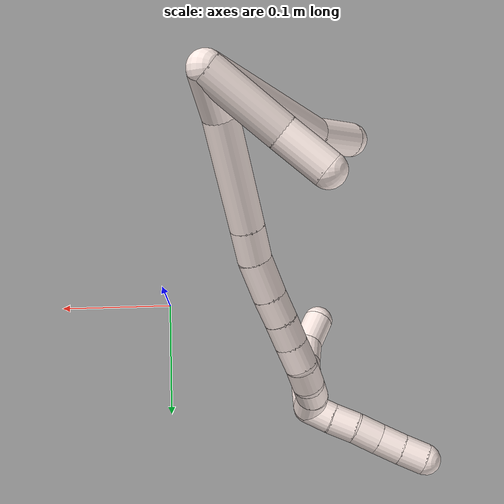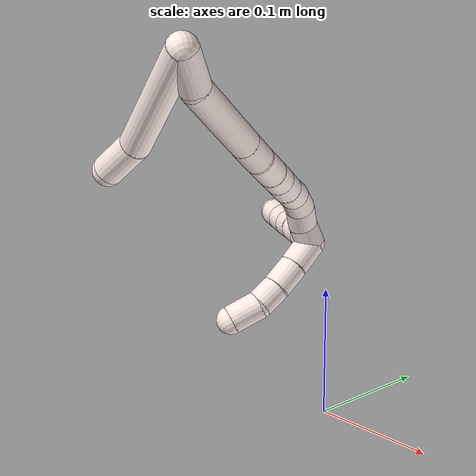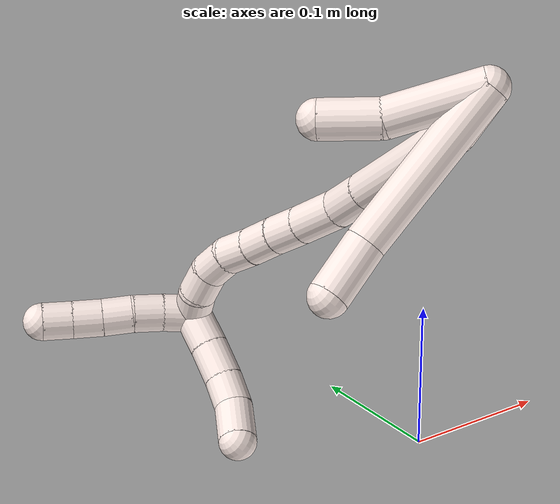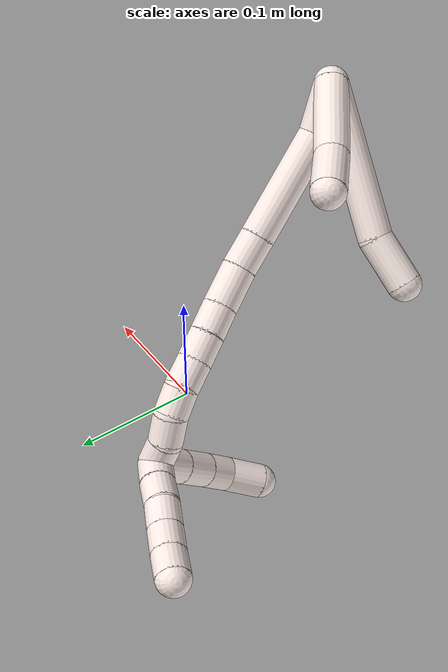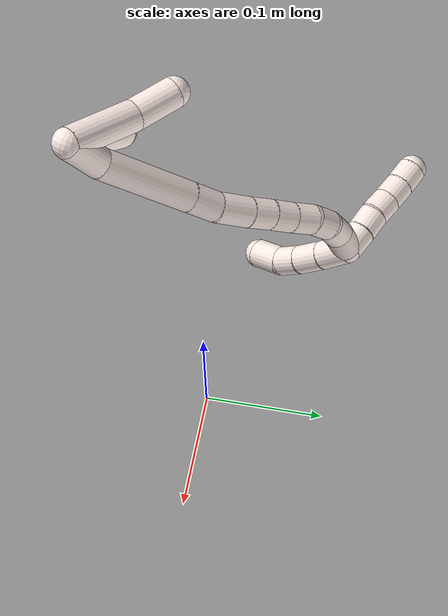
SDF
<sdf version="1.7">
 <world name="default">
  <model name="11">
   <static>0</static>
   <link name="11">
    <collision name="collision-cylinder-e_1_2_8">
     <pose>-0.048901 0.027367 0.000797 -1.54169 -1.0604 1.03518</pose>
     <geometry><cylinder><radius>0.0125</radius><length>0.112088</length></cylinder></geometry>
     <surface>
      <friction><ode><mu>1.16</mu><mu2>1.16</mu2><slip1>0</slip1><slip2>0</slip2></ode></friction>
      <contact><ode><kp>1e+06</kp><kd>1</kd><max_vel>0</max_vel><min_depth>0.001</min_depth></ode></contact>
     </surface>
    </collision>
    <visual name="visual-cylinder-e_1_2_8">
     <pose>-0.048901 0.027367 0.000797 -1.54169 -1.0604 1.03518</pose>
     <geometry><cylinder><radius>0.0125</radius><length>0.112088</length></cylinder></geometry>
     <material><ambient>1 0.933333 0.909804 1</ambient></material>
    </visual>
    <collision name="collision-cylinder-e_2_8_6">
     <pose>-0.116148 0.059173 0.003347 -1.19453 -1.31632 0.968224</pose>
     <geometry><cylinder><radius>0.0125</radius><length>0.037912</length></cylinder></geometry>
     <surface>
      <friction><ode><mu>1.16</mu><mu2>1.16</mu2><slip1>0</slip1><slip2>0</slip2></ode></friction>
      <contact><ode><kp>1e+06</kp><kd>1</kd><max_vel>0</max_vel><min_depth>0.001</min_depth></ode></contact>
     </surface>
    </collision>
    <visual name="visual-cylinder-e_2_8_6">
     <pose>-0.116148 0.059173 0.003347 -1.19453 -1.31632 0.968224</pose>
     <geometry><cylinder><radius>0.0125</radius><length>0.037912</length></cylinder></geometry>
     <material><ambient>1 0.933333 0.909804 1</ambient></material>
    </visual>
    <collision name="collision-cylinder-e_1_2_9">
     <pose>-0.015964 0.022622 0.014244 -1.00886 -0.538331 0.302265</pose>
     <geometry><cylinder><radius>0.0125</radius><length>0.062273</length></cylinder></geometry>
     <surface>
      <friction><ode><mu>1.16</mu><mu2>1.16</mu2><slip1>0</slip1><slip2>0</slip2></ode></friction>
      <contact><ode><kp>1e+06</kp><kd>1</kd><max_vel>0</max_vel><min_depth>0.001</min_depth></ode></contact>
     </surface>
    </collision>
    <visual name="visual-cylinder-e_1_2_9">
     <pose>-0.015964 0.022622 0.014244 -1.00886 -0.538331 0.302265</pose>
     <geometry><cylinder><radius>0.0125</radius><length>0.062273</length></cylinder></geometry>
     <material><ambient>1 0.933333 0.909804 1</ambient></material>
    </visual>
    <collision name="collision-cylinder-e_2_9_5">
     <pose>-0.0379 0.058399 0.040617 -0.825941 -0.322155 0.142152</pose>
     <geometry><cylinder><radius>0.0125</radius><length>0.037727</length></cylinder></geometry>
     <surface>
      <friction><ode><mu>1.16</mu><mu2>1.16</mu2><slip1>0</slip1><slip2>0</slip2></ode></friction>
      <contact><ode><kp>1e+06</kp><kd>1</kd><max_vel>0</max_vel><min_depth>0.001</min_depth></ode></contact>
     </surface>
    </collision>
    <visual name="visual-cylinder-e_2_9_5">
     <pose>-0.0379 0.058399 0.040617 -0.825941 -0.322155 0.142152</pose>
     <geometry><cylinder><radius>0.0125</radius><length>0.037727</length></cylinder></geometry>
     <material><ambient>1 0.933333 0.909804 1</ambient></material>
    </visual>
    <collision name="collision-cylinder-e_1_2_10">
     <pose>-0.009166 0.015047 -0.005469 -1.91943 -0.519995 0.725839</pose>
     <geometry><cylinder><radius>0.0125</radius><length>0.036896</length></cylinder></geometry>
     <surface>
      <friction><ode><mu>1.16</mu><mu2>1.16</mu2><slip1>0</slip1><slip2>0</slip2></ode></friction>
      <contact><ode><kp>1e+06</kp><kd>1</kd><max_vel>0</max_vel><min_depth>0.001</min_depth></ode></contact>
     </surface>
    </collision>
    <visual name="visual-cylinder-e_1_2_10">
     <pose>-0.009166 0.015047 -0.005469 -1.91943 -0.519995 0.725839</pose>
     <geometry><cylinder><radius>0.0125</radius><length>0.036896</length></cylinder></geometry>
     <material><ambient>1 0.933333 0.909804 1</ambient></material>
    </visual>
    <collision name="collision-cylinder-e_2_10_11">
     <pose>-0.029072 0.069854 -0.015469 -1.68427 -0.262186 0.293334</pose>
     <geometry><cylinder><radius>0.0125</radius><length>0.082869</length></cylinder></geometry>
     <surface>
      <friction><ode><mu>1.16</mu><mu2>1.16</mu2><slip1>0</slip1><slip2>0</slip2></ode></friction>
      <contact><ode><kp>1e+06</kp><kd>1</kd><max_vel>0</max_vel><min_depth>0.001</min_depth></ode></contact>
     </surface>
    </collision>
    <visual name="visual-cylinder-e_2_10_11">
     <pose>-0.029072 0.069854 -0.015469 -1.68427 -0.262186 0.293334</pose>
     <geometry><cylinder><radius>0.0125</radius><length>0.082869</length></cylinder></geometry>
     <material><ambient>1 0.933333 0.909804 1</ambient></material>
    </visual>
    <collision name="collision-cylinder-e_3_11_12">
     <pose>-0.043051 0.121949 -0.021453 -1.68805 -0.25517 0.286583</pose>
     <geometry><cylinder><radius>0.0125</radius><length>0.025668</length></cylinder></geometry>
     <surface>
      <friction><ode><mu>1.16</mu><mu2>1.16</mu2><slip1>0</slip1><slip2>0</slip2></ode></friction>
      <contact><ode><kp>1e+06</kp><kd>1</kd><max_vel>0</max_vel><min_depth>0.001</min_depth></ode></contact>
     </surface>
    </collision>
    <visual name="visual-cylinder-e_3_11_12">
     <pose>-0.043051 0.121949 -0.021453 -1.68805 -0.25517 0.286583</pose>
     <geometry><cylinder><radius>0.0125</radius><length>0.025668</length></cylinder></geometry>
     <material><ambient>1 0.933333 0.909804 1</ambient></material>
    </visual>
    <collision name="collision-cylinder-e_4_12_13">
     <pose>-0.050743 0.148975 -0.022049 -1.51252 -0.29373 0.277311</pose>
     <geometry><cylinder><radius>0.0125</radius><length>0.030753</length></cylinder></geometry>
     <surface>
      <friction><ode><mu>1.16</mu><mu2>1.16</mu2><slip1>0</slip1><slip2>0</slip2></ode></friction>
      <contact><ode><kp>1e+06</kp><kd>1</kd><max_vel>0</max_vel><min_depth>0.001</min_depth></ode></contact>
     </surface>
    </collision>
    <visual name="visual-cylinder-e_4_12_13">
     <pose>-0.050743 0.148975 -0.022049 -1.51252 -0.29373 0.277311</pose>
     <geometry><cylinder><radius>0.0125</radius><length>0.030753</length></cylinder></geometry>
     <material><ambient>1 0.933333 0.909804 1</ambient></material>
    </visual>
    <collision name="collision-cylinder-e_5_13_14">
     <pose>-0.058461 0.173875 -0.020092 -1.46343 -0.308008 0.277018</pose>
     <geometry><cylinder><radius>0.0125</radius><length>0.021546</length></cylinder></geometry>
     <surface>
      <friction><ode><mu>1.16</mu><mu2>1.16</mu2><slip1>0</slip1><slip2>0</slip2></ode></friction>
      <contact><ode><kp>1e+06</kp><kd>1</kd><max_vel>0</max_vel><min_depth>0.001</min_depth></ode></contact>
     </surface>
    </collision>
    <visual name="visual-cylinder-e_5_13_14">
     <pose>-0.058461 0.173875 -0.020092 -1.46343 -0.308008 0.277018</pose>
     <geometry><cylinder><radius>0.0125</radius><length>0.021546</length></cylinder></geometry>
     <material><ambient>1 0.933333 0.909804 1</ambient></material>
    </visual>
    <collision name="collision-cylinder-e_6_14_15">
     <pose>-0.064959 0.19399 -0.018317 -1.50285 -0.314655 0.294277</pose>
     <geometry><cylinder><radius>0.0125</radius><length>0.020888</length></cylinder></geometry>
     <surface>
      <friction><ode><mu>1.16</mu><mu2>1.16</mu2><slip1>0</slip1><slip2>0</slip2></ode></friction>
      <contact><ode><kp>1e+06</kp><kd>1</kd><max_vel>0</max_vel><min_depth>0.001</min_depth></ode></contact>
     </surface>
    </collision>
    <visual name="visual-cylinder-e_6_14_15">
     <pose>-0.064959 0.19399 -0.018317 -1.50285 -0.314655 0.294277</pose>
     <geometry><cylinder><radius>0.0125</radius><length>0.020888</length></cylinder></geometry>
     <material><ambient>1 0.933333 0.909804 1</ambient></material>
    </visual>
    <collision name="collision-cylinder-e_7_15_16">
     <pose>-0.071147 0.213849 -0.016425 -1.449 -0.286732 0.254153</pose>
     <geometry><cylinder><radius>0.0125</radius><length>0.020904</length></cylinder></geometry>
     <surface>
      <friction><ode><mu>1.16</mu><mu2>1.16</mu2><slip1>0</slip1><slip2>0</slip2></ode></friction>
      <contact><ode><kp>1e+06</kp><kd>1</kd><max_vel>0</max_vel><min_depth>0.001</min_depth></ode></contact>
     </surface>
    </collision>
    <visual name="visual-cylinder-e_7_15_16">
     <pose>-0.071147 0.213849 -0.016425 -1.449 -0.286732 0.254153</pose>
     <geometry><cylinder><radius>0.0125</radius><length>0.020904</length></cylinder></geometry>
     <material><ambient>1 0.933333 0.909804 1</ambient></material>
    </visual>
    <collision name="collision-cylinder-e_8_16_17">
     <pose>-0.078208 0.232898 -0.016353 -1.69615 -0.420935 0.475325</pose>
     <geometry><cylinder><radius>0.0125</radius><length>0.020094</length></cylinder></geometry>
     <surface>
      <friction><ode><mu>1.16</mu><mu2>1.16</mu2><slip1>0</slip1><slip2>0</slip2></ode></friction>
      <contact><ode><kp>1e+06</kp><kd>1</kd><max_vel>0</max_vel><min_depth>0.001</min_depth></ode></contact>
     </surface>
    </collision>
    <visual name="visual-cylinder-e_8_16_17">
     <pose>-0.078208 0.232898 -0.016353 -1.69615 -0.420935 0.475325</pose>
     <geometry><cylinder><radius>0.0125</radius><length>0.020094</length></cylinder></geometry>
     <material><ambient>1 0.933333 0.909804 1</ambient></material>
    </visual>
    <collision name="collision-cylinder-e_9_17_18">
     <pose>-0.087971 0.249665 -0.021005 -1.99948 -0.590956 0.884917</pose>
     <geometry><cylinder><radius>0.0125</radius><length>0.020309</length></cylinder></geometry>
     <surface>
      <friction><ode><mu>1.16</mu><mu2>1.16</mu2><slip1>0</slip1><slip2>0</slip2></ode></friction>
      <contact><ode><kp>1e+06</kp><kd>1</kd><max_vel>0</max_vel><min_depth>0.001</min_depth></ode></contact>
     </surface>
    </collision>
    <visual name="visual-cylinder-e_9_17_18">
     <pose>-0.087971 0.249665 -0.021005 -1.99948 -0.590956 0.884917</pose>
     <geometry><cylinder><radius>0.0125</radius><length>0.020309</length></cylinder></geometry>
     <material><ambient>1 0.933333 0.909804 1</ambient></material>
    </visual>
    <collision name="collision-cylinder-e_10_18_1">
     <pose>-0.097298 0.264884 -0.030013 -2.20068 -0.374221 0.712792</pose>
     <geometry><cylinder><radius>0.0125</radius><length>0.020073</length></cylinder></geometry>
     <surface>
      <friction><ode><mu>1.16</mu><mu2>1.16</mu2><slip1>0</slip1><slip2>0</slip2></ode></friction>
      <contact><ode><kp>1e+06</kp><kd>1</kd><max_vel>0</max_vel><min_depth>0.001</min_depth></ode></contact>
     </surface>
    </collision>
    <visual name="visual-cylinder-e_10_18_1">
     <pose>-0.097298 0.264884 -0.030013 -2.20068 -0.374221 0.712792</pose>
     <geometry><cylinder><radius>0.0125</radius><length>0.020073</length></cylinder></geometry>
     <material><ambient>1 0.933333 0.909804 1</ambient></material>
    </visual>
    <collision name="collision-cylinder-e_1_1_19">
     <pose>-0.104948 0.277141 -0.027643 -0.538943 -0.409463 0.114571</pose>
     <geometry><cylinder><radius>0.0125</radius><length>0.02</length></cylinder></geometry>
     <surface>
      <friction><ode><mu>1.16</mu><mu2>1.16</mu2><slip1>0</slip1><slip2>0</slip2></ode></friction>
      <contact><ode><kp>1e+06</kp><kd>1</kd><max_vel>0</max_vel><min_depth>0.001</min_depth></ode></contact>
     </surface>
    </collision>
    <visual name="visual-cylinder-e_1_1_19">
     <pose>-0.104948 0.277141 -0.027643 -0.538943 -0.409463 0.114571</pose>
     <geometry><cylinder><radius>0.0125</radius><length>0.02</length></cylinder></geometry>
     <material><ambient>1 0.933333 0.909804 1</ambient></material>
    </visual>
    <collision name="collision-cylinder-e_2_19_20">
     <pose>-0.113564 0.286202 -0.012052 -0.513535 -0.481921 0.128863</pose>
     <geometry><cylinder><radius>0.0125</radius><length>0.02</length></cylinder></geometry>
     <surface>
      <friction><ode><mu>1.16</mu><mu2>1.16</mu2><slip1>0</slip1><slip2>0</slip2></ode></friction>
      <contact><ode><kp>1e+06</kp><kd>1</kd><max_vel>0</max_vel><min_depth>0.001</min_depth></ode></contact>
     </surface>
    </collision>
    <visual name="visual-cylinder-e_2_19_20">
     <pose>-0.113564 0.286202 -0.012052 -0.513535 -0.481921 0.128863</pose>
     <geometry><cylinder><radius>0.0125</radius><length>0.02</length></cylinder></geometry>
     <material><ambient>1 0.933333 0.909804 1</ambient></material>
    </visual>
    <collision name="collision-cylinder-e_3_20_21">
     <pose>-0.123186 0.295868 0.002515 -0.659769 -0.522095 0.18243</pose>
     <geometry><cylinder><radius>0.0125</radius><length>0.02</length></cylinder></geometry>
     <surface>
      <friction><ode><mu>1.16</mu><mu2>1.16</mu2><slip1>0</slip1><slip2>0</slip2></ode></friction>
      <contact><ode><kp>1e+06</kp><kd>1</kd><max_vel>0</max_vel><min_depth>0.001</min_depth></ode></contact>
     </surface>
    </collision>
    <visual name="visual-cylinder-e_3_20_21">
     <pose>-0.123186 0.295868 0.002515 -0.659769 -0.522095 0.18243</pose>
     <geometry><cylinder><radius>0.0125</radius><length>0.02</length></cylinder></geometry>
     <material><ambient>1 0.933333 0.909804 1</ambient></material>
    </visual>
    <collision name="collision-cylinder-e_4_21_22">
     <pose>-0.132895 0.306134 0.016655 -0.596714 -0.491809 0.154068</pose>
     <geometry><cylinder><radius>0.0125</radius><length>0.02</length></cylinder></geometry>
     <surface>
      <friction><ode><mu>1.16</mu><mu2>1.16</mu2><slip1>0</slip1><slip2>0</slip2></ode></friction>
      <contact><ode><kp>1e+06</kp><kd>1</kd><max_vel>0</max_vel><min_depth>0.001</min_depth></ode></contact>
     </surface>
    </collision>
    <visual name="visual-cylinder-e_4_21_22">
     <pose>-0.132895 0.306134 0.016655 -0.596714 -0.491809 0.154068</pose>
     <geometry><cylinder><radius>0.0125</radius><length>0.02</length></cylinder></geometry>
     <material><ambient>1 0.933333 0.909804 1</ambient></material>
    </visual>
    <collision name="collision-cylinder-e_5_22_4">
     <pose>-0.142342 0.315706 0.031453 -0.551599 -0.492109 0.141915</pose>
     <geometry><cylinder><radius>0.0125</radius><length>0.02</length></cylinder></geometry>
     <surface>
      <friction><ode><mu>1.16</mu><mu2>1.16</mu2><slip1>0</slip1><slip2>0</slip2></ode></friction>
      <contact><ode><kp>1e+06</kp><kd>1</kd><max_vel>0</max_vel><min_depth>0.001</min_depth></ode></contact>
     </surface>
    </collision>
    <visual name="visual-cylinder-e_5_22_4">
     <pose>-0.142342 0.315706 0.031453 -0.551599 -0.492109 0.141915</pose>
     <geometry><cylinder><radius>0.0125</radius><length>0.02</length></cylinder></geometry>
     <material><ambient>1 0.933333 0.909804 1</ambient></material>
    </visual>
    <collision name="collision-cylinder-e_1_1_23">
     <pose>-0.109993 0.266597 -0.043338 2.50063 -0.746389 -1.73524</pose>
     <geometry><cylinder><radius>0.0125</radius><length>0.026587</length></cylinder></geometry>
     <surface>
      <friction><ode><mu>1.16</mu><mu2>1.16</mu2><slip1>0</slip1><slip2>0</slip2></ode></friction>
      <contact><ode><kp>1e+06</kp><kd>1</kd><max_vel>0</max_vel><min_depth>0.001</min_depth></ode></contact>
     </surface>
    </collision>
    <visual name="visual-cylinder-e_1_1_23">
     <pose>-0.109993 0.266597 -0.043338 2.50063 -0.746389 -1.73524</pose>
     <geometry><cylinder><radius>0.0125</radius><length>0.026587</length></cylinder></geometry>
     <material><ambient>1 0.933333 0.909804 1</ambient></material>
    </visual>
    <collision name="collision-cylinder-e_2_23_24">
     <pose>-0.127743 0.255277 -0.057842 2.45428 -0.790007 -1.72296</pose>
     <geometry><cylinder><radius>0.0125</radius><length>0.024563</length></cylinder></geometry>
     <surface>
      <friction><ode><mu>1.16</mu><mu2>1.16</mu2><slip1>0</slip1><slip2>0</slip2></ode></friction>
      <contact><ode><kp>1e+06</kp><kd>1</kd><max_vel>0</max_vel><min_depth>0.001</min_depth></ode></contact>
     </surface>
    </collision>
    <visual name="visual-cylinder-e_2_23_24">
     <pose>-0.127743 0.255277 -0.057842 2.45428 -0.790007 -1.72296</pose>
     <geometry><cylinder><radius>0.0125</radius><length>0.024563</length></cylinder></geometry>
     <material><ambient>1 0.933333 0.909804 1</ambient></material>
    </visual>
    <collision name="collision-cylinder-e_3_24_25">
     <pose>-0.144564 0.244931 -0.069346 2.35211 -0.868761 -1.67818</pose>
     <geometry><cylinder><radius>0.0125</radius><length>0.021209</length></cylinder></geometry>
     <surface>
      <friction><ode><mu>1.16</mu><mu2>1.16</mu2><slip1>0</slip1><slip2>0</slip2></ode></friction>
      <contact><ode><kp>1e+06</kp><kd>1</kd><max_vel>0</max_vel><min_depth>0.001</min_depth></ode></contact>
     </surface>
    </collision>
    <visual name="visual-cylinder-e_3_24_25">
     <pose>-0.144564 0.244931 -0.069346 2.35211 -0.868761 -1.67818</pose>
     <geometry><cylinder><radius>0.0125</radius><length>0.021209</length></cylinder></geometry>
     <material><ambient>1 0.933333 0.909804 1</ambient></material>
    </visual>
    <collision name="collision-cylinder-e_4_25_3">
     <pose>-0.164393 0.233102 -0.07637 1.87694 -1.01381 -1.29708</pose>
     <geometry><cylinder><radius>0.0125</radius><length>0.027642</length></cylinder></geometry>
     <surface>
      <friction><ode><mu>1.16</mu><mu2>1.16</mu2><slip1>0</slip1><slip2>0</slip2></ode></friction>
      <contact><ode><kp>1e+06</kp><kd>1</kd><max_vel>0</max_vel><min_depth>0.001</min_depth></ode></contact>
     </surface>
    </collision>
    <visual name="visual-cylinder-e_4_25_3">
     <pose>-0.164393 0.233102 -0.07637 1.87694 -1.01381 -1.29708</pose>
     <geometry><cylinder><radius>0.0125</radius><length>0.027642</length></cylinder></geometry>
     <material><ambient>1 0.933333 0.909804 1</ambient></material>
    </visual>
    <collision name="collision-sphere-3">
     <pose>-0.176124 0.226136 -0.078572 0 -0 0</pose>
     <geometry><sphere><radius>0.0125</radius></sphere></geometry>
     <surface>
      <friction><ode><mu>1.16</mu><mu2>1.16</mu2><slip1>0</slip1><slip2>0</slip2></ode></friction>
      <contact><ode><kp>1e+06</kp><kd>1</kd><max_vel>0</max_vel><min_depth>0.001</min_depth></ode></contact>
     </surface>
    </collision>
    <visual name="visual-sphere-3">
     <pose>-0.176124 0.226136 -0.078572 0 -0 0</pose>
     <geometry><sphere><radius>0.0125</radius></sphere></geometry>
     <material><ambient>1 0.933333 0.909804 1</ambient></material>
    </visual>
    <collision name="collision-sphere-25">
     <pose>-0.152661 0.240069 -0.074168 0 -0 0</pose>
     <geometry><sphere><radius>0.0125</radius></sphere></geometry>
     <surface>
      <friction><ode><mu>1.16</mu><mu2>1.16</mu2><slip1>0</slip1><slip2>0</slip2></ode></friction>
      <contact><ode><kp>1e+06</kp><kd>1</kd><max_vel>0</max_vel><min_depth>0.001</min_depth></ode></contact>
     </surface>
    </collision>
    <visual name="visual-sphere-25">
     <pose>-0.152661 0.240069 -0.074168 0 -0 0</pose>
     <geometry><sphere><radius>0.0125</radius></sphere></geometry>
     <material><ambient>1 0.933333 0.909804 1</ambient></material>
    </visual>
    <collision name="collision-sphere-24">
     <pose>-0.136467 0.249793 -0.064523 0 -0 0</pose>
     <geometry><sphere><radius>0.0125</radius></sphere></geometry>
     <surface>
      <friction><ode><mu>1.16</mu><mu2>1.16</mu2><slip1>0</slip1><slip2>0</slip2></ode></friction>
      <contact><ode><kp>1e+06</kp><kd>1</kd><max_vel>0</max_vel><min_depth>0.001</min_depth></ode></contact>
     </surface>
    </collision>
    <visual name="visual-sphere-24">
     <pose>-0.136467 0.249793 -0.064523 0 -0 0</pose>
     <geometry><sphere><radius>0.0125</radius></sphere></geometry>
     <material><ambient>1 0.933333 0.909804 1</ambient></material>
    </visual>
    <collision name="collision-sphere-23">
     <pose>-0.119019 0.260761 -0.051161 0 -0 0</pose>
     <geometry><sphere><radius>0.0125</radius></sphere></geometry>
     <surface>
      <friction><ode><mu>1.16</mu><mu2>1.16</mu2><slip1>0</slip1><slip2>0</slip2></ode></friction>
      <contact><ode><kp>1e+06</kp><kd>1</kd><max_vel>0</max_vel><min_depth>0.001</min_depth></ode></contact>
     </surface>
    </collision>
    <visual name="visual-sphere-23">
     <pose>-0.119019 0.260761 -0.051161 0 -0 0</pose>
     <geometry><sphere><radius>0.0125</radius></sphere></geometry>
     <material><ambient>1 0.933333 0.909804 1</ambient></material>
    </visual>
    <collision name="collision-sphere-4">
     <pose>-0.147067 0.320324 0.038959 0 -0 0</pose>
     <geometry><sphere><radius>0.0125</radius></sphere></geometry>
     <surface>
      <friction><ode><mu>1.16</mu><mu2>1.16</mu2><slip1>0</slip1><slip2>0</slip2></ode></friction>
      <contact><ode><kp>1e+06</kp><kd>1</kd><max_vel>0</max_vel><min_depth>0.001</min_depth></ode></contact>
     </surface>
    </collision>
    <visual name="visual-sphere-4">
     <pose>-0.147067 0.320324 0.038959 0 -0 0</pose>
     <geometry><sphere><radius>0.0125</radius></sphere></geometry>
     <material><ambient>1 0.933333 0.909804 1</ambient></material>
    </visual>
    <collision name="collision-sphere-22">
     <pose>-0.137617 0.311087 0.023947 0 -0 0</pose>
     <geometry><sphere><radius>0.0125</radius></sphere></geometry>
     <surface>
      <friction><ode><mu>1.16</mu><mu2>1.16</mu2><slip1>0</slip1><slip2>0</slip2></ode></friction>
      <contact><ode><kp>1e+06</kp><kd>1</kd><max_vel>0</max_vel><min_depth>0.001</min_depth></ode></contact>
     </surface>
    </collision>
    <visual name="visual-sphere-22">
     <pose>-0.137617 0.311087 0.023947 0 -0 0</pose>
     <geometry><sphere><radius>0.0125</radius></sphere></geometry>
     <material><ambient>1 0.933333 0.909804 1</ambient></material>
    </visual>
    <collision name="collision-sphere-21">
     <pose>-0.128173 0.301181 0.009364 0 -0 0</pose>
     <geometry><sphere><radius>0.0125</radius></sphere></geometry>
     <surface>
      <friction><ode><mu>1.16</mu><mu2>1.16</mu2><slip1>0</slip1><slip2>0</slip2></ode></friction>
      <contact><ode><kp>1e+06</kp><kd>1</kd><max_vel>0</max_vel><min_depth>0.001</min_depth></ode></contact>
     </surface>
    </collision>
    <visual name="visual-sphere-21">
     <pose>-0.128173 0.301181 0.009364 0 -0 0</pose>
     <geometry><sphere><radius>0.0125</radius></sphere></geometry>
     <material><ambient>1 0.933333 0.909804 1</ambient></material>
    </visual>
    <collision name="collision-sphere-20">
     <pose>-0.118199 0.290555 -0.004334 0 -0 0</pose>
     <geometry><sphere><radius>0.0125</radius></sphere></geometry>
     <surface>
      <friction><ode><mu>1.16</mu><mu2>1.16</mu2><slip1>0</slip1><slip2>0</slip2></ode></friction>
      <contact><ode><kp>1e+06</kp><kd>1</kd><max_vel>0</max_vel><min_depth>0.001</min_depth></ode></contact>
     </surface>
    </collision>
    <visual name="visual-sphere-20">
     <pose>-0.118199 0.290555 -0.004334 0 -0 0</pose>
     <geometry><sphere><radius>0.0125</radius></sphere></geometry>
     <material><ambient>1 0.933333 0.909804 1</ambient></material>
    </visual>
    <collision name="collision-sphere-10">
     <pose>-0.018333 0.030093 -0.010938 0 -0 0</pose>
     <geometry><sphere><radius>0.0125</radius></sphere></geometry>
     <surface>
      <friction><ode><mu>1.16</mu><mu2>1.16</mu2><slip1>0</slip1><slip2>0</slip2></ode></friction>
      <contact><ode><kp>1e+06</kp><kd>1</kd><max_vel>0</max_vel><min_depth>0.001</min_depth></ode></contact>
     </surface>
    </collision>
    <visual name="visual-sphere-10">
     <pose>-0.018333 0.030093 -0.010938 0 -0 0</pose>
     <geometry><sphere><radius>0.0125</radius></sphere></geometry>
     <material><ambient>1 0.933333 0.909804 1</ambient></material>
    </visual>
    <collision name="collision-sphere-5">
     <pose>-0.043873 0.071553 0.052746 0 -0 0</pose>
     <geometry><sphere><radius>0.0125</radius></sphere></geometry>
     <surface>
      <friction><ode><mu>1.16</mu><mu2>1.16</mu2><slip1>0</slip1><slip2>0</slip2></ode></friction>
      <contact><ode><kp>1e+06</kp><kd>1</kd><max_vel>0</max_vel><min_depth>0.001</min_depth></ode></contact>
     </surface>
    </collision>
    <visual name="visual-sphere-5">
     <pose>-0.043873 0.071553 0.052746 0 -0 0</pose>
     <geometry><sphere><radius>0.0125</radius></sphere></geometry>
     <material><ambient>1 0.933333 0.909804 1</ambient></material>
    </visual>
    <collision name="collision-sphere-6">
     <pose>-0.134493 0.063611 0.005101 0 -0 0</pose>
     <geometry><sphere><radius>0.0125</radius></sphere></geometry>
     <surface>
      <friction><ode><mu>1.16</mu><mu2>1.16</mu2><slip1>0</slip1><slip2>0</slip2></ode></friction>
      <contact><ode><kp>1e+06</kp><kd>1</kd><max_vel>0</max_vel><min_depth>0.001</min_depth></ode></contact>
     </surface>
    </collision>
    <visual name="visual-sphere-6">
     <pose>-0.134493 0.063611 0.005101 0 -0 0</pose>
     <geometry><sphere><radius>0.0125</radius></sphere></geometry>
     <material><ambient>1 0.933333 0.909804 1</ambient></material>
    </visual>
    <collision name="collision-sphere-9">
     <pose>-0.031928 0.045244 0.028488 0 -0 0</pose>
     <geometry><sphere><radius>0.0125</radius></sphere></geometry>
     <surface>
      <friction><ode><mu>1.16</mu><mu2>1.16</mu2><slip1>0</slip1><slip2>0</slip2></ode></friction>
      <contact><ode><kp>1e+06</kp><kd>1</kd><max_vel>0</max_vel><min_depth>0.001</min_depth></ode></contact>
     </surface>
    </collision>
    <visual name="visual-sphere-9">
     <pose>-0.031928 0.045244 0.028488 0 -0 0</pose>
     <geometry><sphere><radius>0.0125</radius></sphere></geometry>
     <material><ambient>1 0.933333 0.909804 1</ambient></material>
    </visual>
    <collision name="collision-sphere-2">
     <geometry><sphere><radius>0.0125</radius></sphere></geometry>
     <surface>
      <friction><ode><mu>1.16</mu><mu2>1.16</mu2><slip1>0</slip1><slip2>0</slip2></ode></friction>
      <contact><ode><kp>1e+06</kp><kd>1</kd><max_vel>0</max_vel><min_depth>0.001</min_depth></ode></contact>
     </surface>
    </collision>
    <visual name="visual-sphere-2">
     <geometry><sphere><radius>0.0125</radius></sphere></geometry>
     <material><ambient>1 0.933333 0.909804 1</ambient></material>
    </visual>
    <collision name="collision-sphere-19">
     <pose>-0.108929 0.281849 -0.01977 0 -0 0</pose>
     <geometry><sphere><radius>0.0125</radius></sphere></geometry>
     <surface>
      <friction><ode><mu>1.16</mu><mu2>1.16</mu2><slip1>0</slip1><slip2>0</slip2></ode></friction>
      <contact><ode><kp>1e+06</kp><kd>1</kd><max_vel>0</max_vel><min_depth>0.001</min_depth></ode></contact>
     </surface>
    </collision>
    <visual name="visual-sphere-19">
     <pose>-0.108929 0.281849 -0.01977 0 -0 0</pose>
     <geometry><sphere><radius>0.0125</radius></sphere></geometry>
     <material><ambient>1 0.933333 0.909804 1</ambient></material>
    </visual>
    <collision name="collision-sphere-8">
     <pose>-0.097802 0.054735 0.001594 0 -0 0</pose>
     <geometry><sphere><radius>0.0125</radius></sphere></geometry>
     <surface>
      <friction><ode><mu>1.16</mu><mu2>1.16</mu2><slip1>0</slip1><slip2>0</slip2></ode></friction>
      <contact><ode><kp>1e+06</kp><kd>1</kd><max_vel>0</max_vel><min_depth>0.001</min_depth></ode></contact>
     </surface>
    </collision>
    <visual name="visual-sphere-8">
     <pose>-0.097802 0.054735 0.001594 0 -0 0</pose>
     <geometry><sphere><radius>0.0125</radius></sphere></geometry>
     <material><ambient>1 0.933333 0.909804 1</ambient></material>
    </visual>
    <collision name="collision-sphere-11">
     <pose>-0.039812 0.109616 -0.020001 0 -0 0</pose>
     <geometry><sphere><radius>0.0125</radius></sphere></geometry>
     <surface>
      <friction><ode><mu>1.16</mu><mu2>1.16</mu2><slip1>0</slip1><slip2>0</slip2></ode></friction>
      <contact><ode><kp>1e+06</kp><kd>1</kd><max_vel>0</max_vel><min_depth>0.001</min_depth></ode></contact>
     </surface>
    </collision>
    <visual name="visual-sphere-11">
     <pose>-0.039812 0.109616 -0.020001 0 -0 0</pose>
     <geometry><sphere><radius>0.0125</radius></sphere></geometry>
     <material><ambient>1 0.933333 0.909804 1</ambient></material>
    </visual>
    <collision name="collision-sphere-12">
     <pose>-0.046291 0.134282 -0.022906 0 -0 0</pose>
     <geometry><sphere><radius>0.0125</radius></sphere></geometry>
     <surface>
      <friction><ode><mu>1.16</mu><mu2>1.16</mu2><slip1>0</slip1><slip2>0</slip2></ode></friction>
      <contact><ode><kp>1e+06</kp><kd>1</kd><max_vel>0</max_vel><min_depth>0.001</min_depth></ode></contact>
     </surface>
    </collision>
    <visual name="visual-sphere-12">
     <pose>-0.046291 0.134282 -0.022906 0 -0 0</pose>
     <geometry><sphere><radius>0.0125</radius></sphere></geometry>
     <material><ambient>1 0.933333 0.909804 1</ambient></material>
    </visual>
    <collision name="collision-sphere-13">
     <pose>-0.055195 0.163668 -0.021192 0 -0 0</pose>
     <geometry><sphere><radius>0.0125</radius></sphere></geometry>
     <surface>
      <friction><ode><mu>1.16</mu><mu2>1.16</mu2><slip1>0</slip1><slip2>0</slip2></ode></friction>
      <contact><ode><kp>1e+06</kp><kd>1</kd><max_vel>0</max_vel><min_depth>0.001</min_depth></ode></contact>
     </surface>
    </collision>
    <visual name="visual-sphere-13">
     <pose>-0.055195 0.163668 -0.021192 0 -0 0</pose>
     <geometry><sphere><radius>0.0125</radius></sphere></geometry>
     <material><ambient>1 0.933333 0.909804 1</ambient></material>
    </visual>
    <collision name="collision-sphere-14">
     <pose>-0.061726 0.184081 -0.018992 0 -0 0</pose>
     <geometry><sphere><radius>0.0125</radius></sphere></geometry>
     <surface>
      <friction><ode><mu>1.16</mu><mu2>1.16</mu2><slip1>0</slip1><slip2>0</slip2></ode></friction>
      <contact><ode><kp>1e+06</kp><kd>1</kd><max_vel>0</max_vel><min_depth>0.001</min_depth></ode></contact>
     </surface>
    </collision>
    <visual name="visual-sphere-14">
     <pose>-0.061726 0.184081 -0.018992 0 -0 0</pose>
     <geometry><sphere><radius>0.0125</radius></sphere></geometry>
     <material><ambient>1 0.933333 0.909804 1</ambient></material>
    </visual>
    <collision name="collision-sphere-15">
     <pose>-0.068191 0.203898 -0.017643 0 -0 0</pose>
     <geometry><sphere><radius>0.0125</radius></sphere></geometry>
     <surface>
      <friction><ode><mu>1.16</mu><mu2>1.16</mu2><slip1>0</slip1><slip2>0</slip2></ode></friction>
      <contact><ode><kp>1e+06</kp><kd>1</kd><max_vel>0</max_vel><min_depth>0.001</min_depth></ode></contact>
     </surface>
    </collision>
    <visual name="visual-sphere-15">
     <pose>-0.068191 0.203898 -0.017643 0 -0 0</pose>
     <geometry><sphere><radius>0.0125</radius></sphere></geometry>
     <material><ambient>1 0.933333 0.909804 1</ambient></material>
    </visual>
    <collision name="collision-sphere-16">
     <pose>-0.074103 0.2238 -0.015207 0 -0 0</pose>
     <geometry><sphere><radius>0.0125</radius></sphere></geometry>
     <surface>
      <friction><ode><mu>1.16</mu><mu2>1.16</mu2><slip1>0</slip1><slip2>0</slip2></ode></friction>
      <contact><ode><kp>1e+06</kp><kd>1</kd><max_vel>0</max_vel><min_depth>0.001</min_depth></ode></contact>
     </surface>
    </collision>
    <visual name="visual-sphere-16">
     <pose>-0.074103 0.2238 -0.015207 0 -0 0</pose>
     <geometry><sphere><radius>0.0125</radius></sphere></geometry>
     <material><ambient>1 0.933333 0.909804 1</ambient></material>
    </visual>
    <collision name="collision-sphere-17">
     <pose>-0.082314 0.241996 -0.0175 0 -0 0</pose>
     <geometry><sphere><radius>0.0125</radius></sphere></geometry>
     <surface>
      <friction><ode><mu>1.16</mu><mu2>1.16</mu2><slip1>0</slip1><slip2>0</slip2></ode></friction>
      <contact><ode><kp>1e+06</kp><kd>1</kd><max_vel>0</max_vel><min_depth>0.001</min_depth></ode></contact>
     </surface>
    </collision>
    <visual name="visual-sphere-17">
     <pose>-0.082314 0.241996 -0.0175 0 -0 0</pose>
     <geometry><sphere><radius>0.0125</radius></sphere></geometry>
     <material><ambient>1 0.933333 0.909804 1</ambient></material>
    </visual>
    <collision name="collision-sphere-18">
     <pose>-0.093629 0.257335 -0.02451 0 -0 0</pose>
     <geometry><sphere><radius>0.0125</radius></sphere></geometry>
     <surface>
      <friction><ode><mu>1.16</mu><mu2>1.16</mu2><slip1>0</slip1><slip2>0</slip2></ode></friction>
      <contact><ode><kp>1e+06</kp><kd>1</kd><max_vel>0</max_vel><min_depth>0.001</min_depth></ode></contact>
     </surface>
    </collision>
    <visual name="visual-sphere-18">
     <pose>-0.093629 0.257335 -0.02451 0 -0 0</pose>
     <geometry><sphere><radius>0.0125</radius></sphere></geometry>
     <material><ambient>1 0.933333 0.909804 1</ambient></material>
    </visual>
    <collision name="collision-sphere-1">
     <pose>-0.100967 0.272433 -0.035516 0 -0 0</pose>
     <geometry><sphere><radius>0.0125</radius></sphere></geometry>
     <surface>
      <friction><ode><mu>1.16</mu><mu2>1.16</mu2><slip1>0</slip1><slip2>0</slip2></ode></friction>
      <contact><ode><kp>1e+06</kp><kd>1</kd><max_vel>0</max_vel><min_depth>0.001</min_depth></ode></contact>
     </surface>
    </collision>
    <visual name="visual-sphere-1">
     <pose>-0.100967 0.272433 -0.035516 0 -0 0</pose>
     <geometry><sphere><radius>0.0125</radius></sphere></geometry>
     <material><ambient>1 0.933333 0.909804 1</ambient></material>
    </visual>
    <inertial>
     <pose>-0.070863 0.139909 -0.011373 0 -0 0</pose>
     <mass>0.75</mass>
     <inertia><ixx>0.00017</ixx><ixy>0</ixy><ixz>0</ixz><iyy>0.000238</iyy><iyz>0</iyz><izz>1.3e-05</izz></inertia>
    </inertial>
   </link>
   <pose>-0.042122 -0.101555 0.287948 -0.548899 -0.666674 0.477763</pose>
  </model>
 </world>
</sdf>
